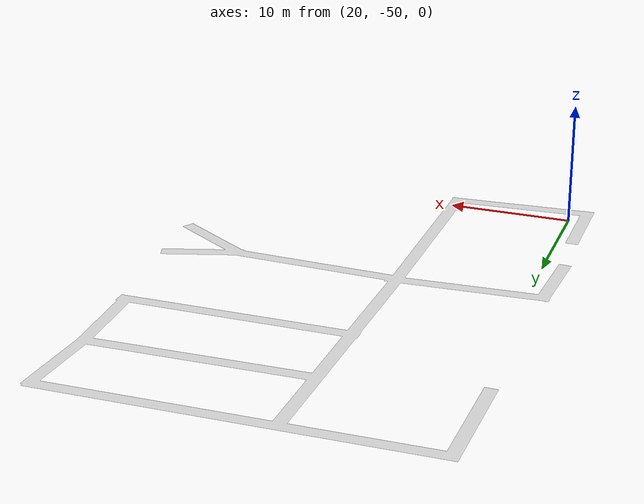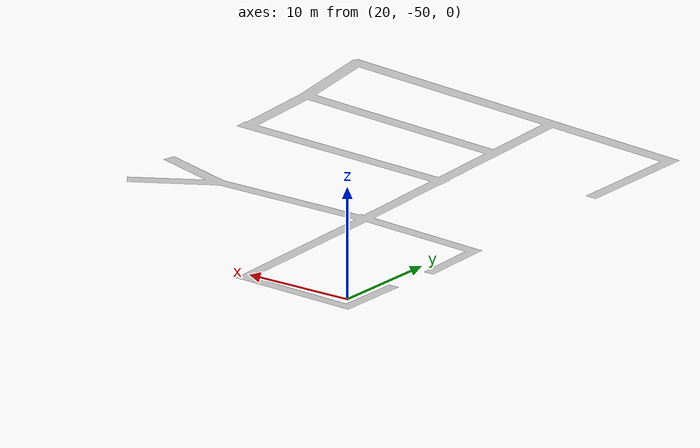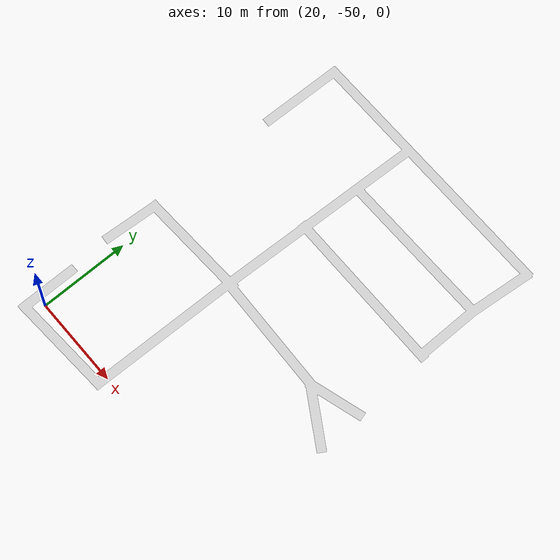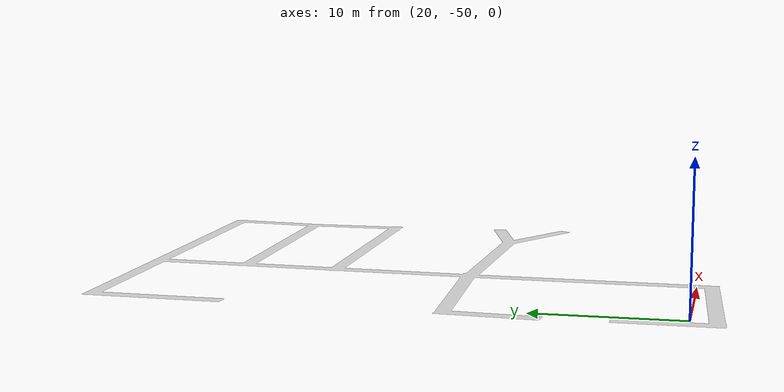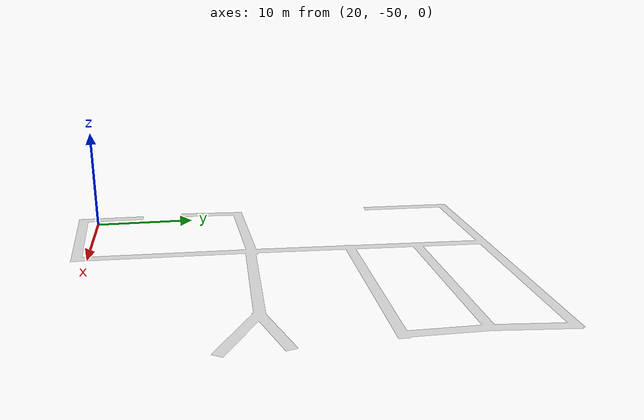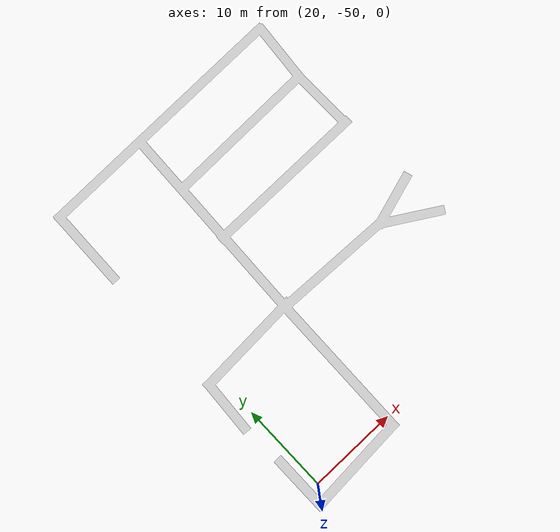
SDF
<?xml version='1.0' encoding='utf-8'?>
<sdf version="1.7">
  <model name="navgraph_0">
    <static>true</static>
    <link name="navgraph_0">
      <visual name="navgraph_0">
        <geometry>
          <mesh>
            <uri>meshes/navgraph_0.obj</uri>
          </mesh>
        </geometry>
        <transparency>0.5</transparency>
      </visual>
      <pose>0 0 0 0 0 0</pose>
    </link>
  </model>
</sdf>
